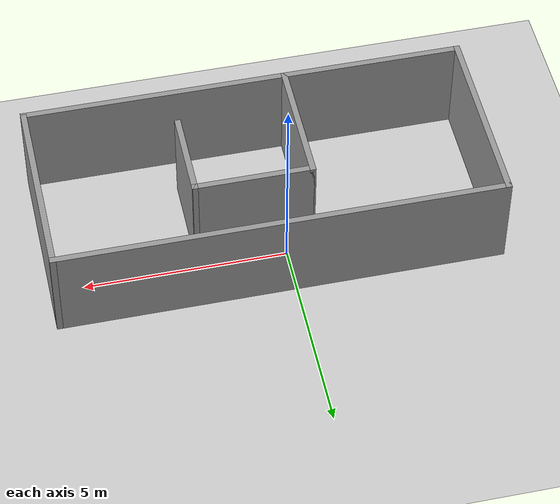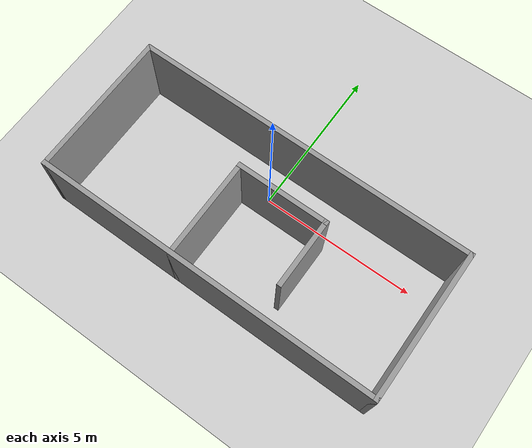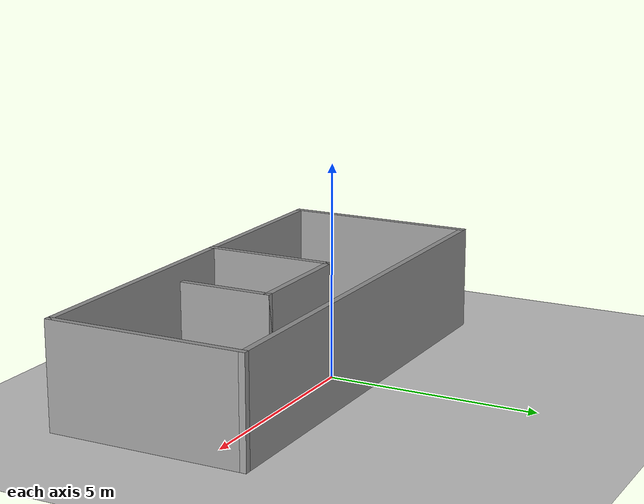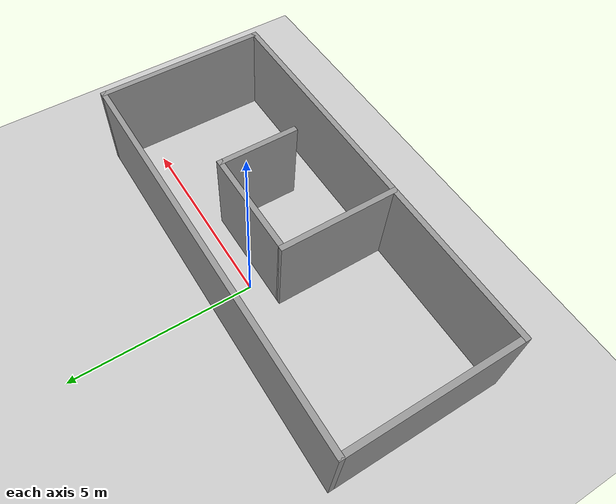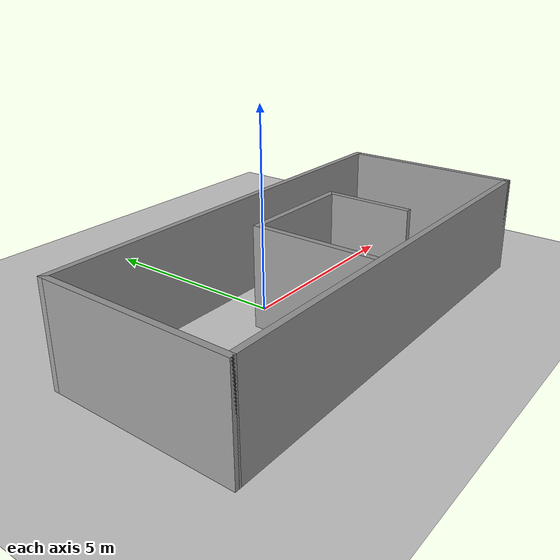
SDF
<sdf version="1.7">
 <world name="default">
  <light name="sun" type="directional">
   <pose>0 0 10 0 -0 0</pose>
   <diffuse>0.8 0.8 0.8 1</diffuse>
   <specular>0.2 0.2 0.2 1</specular>
   <attenuation>
    <range>1000</range>
    <constant>0.9</constant>
    <linear>0.01</linear>
    <quadratic>0.001</quadratic>
   </attenuation>
   <direction>-0.5 0.1 -0.9</direction>
   <spot><inner_angle>0</inner_angle><outer_angle>0</outer_angle><falloff>0</falloff></spot>
  </light>
  <model name="ground_plane">
   <static>1</static>
   <link name="link">
    <collision name="collision">
     <geometry><plane><normal>0 0 1</normal><size>100 100</size></plane></geometry>
     <surface>
      <contact><collide_bitmask>65535</collide_bitmask></contact>
      <friction><ode><mu>100</mu><mu2>50</mu2></ode></friction>
     </surface>
    </collision>
    <visual name="visual">
     <cast_shadows>0</cast_shadows>
     <geometry><plane><normal>0 0 1</normal><size>100 100</size></plane></geometry>
     <material>
      <script><uri>file://media/materials/scripts/gazebo.material</uri><name>Gazebo/Grey</name></script>
     </material>
    </visual>
   </link>
  </model>
  <gravity>0 0 -9.8</gravity>
  <magnetic_field>6e-06 2.3e-05 -4.2e-05</magnetic_field>
  <atmosphere type="adiabatic"/>
  <physics type="ode">
   <max_step_size>0.001</max_step_size>
   <real_time_factor>1</real_time_factor>
   <real_time_update_rate>1000</real_time_update_rate>
  </physics>
  <scene><ambient>0.4 0.4 0.4 1</ambient><background>0.7 0.7 0.7 1</background><shadows>1</shadows></scene>
  <audio><device>default</device></audio>
  <spherical_coordinates>
   <surface_model>EARTH_WGS84</surface_model>
   <latitude_deg>0</latitude_deg>
   <longitude_deg>0</longitude_deg>
   <elevation>0</elevation>
   <heading_deg>0</heading_deg>
  </spherical_coordinates>
  <model name="hotle_room">
   <pose>0.325773 -1.11873 0 0 -0 0</pose>
   <link name="Wall_11">
    <collision name="Wall_11_Collision">
     <geometry><box><size>4.75 0.15 2.5</size></box></geometry>
     <pose>0 0 1.25 0 -0 0</pose>
    </collision>
    <visual name="Wall_11_Visual">
     <pose>0 0 1.25 0 -0 0</pose>
     <geometry><box><size>4.75 0.15 2.5</size></box></geometry>
     <material>
      <script><uri>file://media/materials/scripts/gazebo.material</uri><name>Gazebo/Grey</name></script>
      <ambient>1 1 1 1</ambient>
     </material>
     <meta><layer>0</layer></meta>
    </visual>
    <pose>-5.425 -0.1425 0 0 -0 -1.5708</pose>
   </link>
   <link name="Wall_12">
    <collision name="Wall_12_Collision">
     <geometry><box><size>11 0.15 2.5</size></box></geometry>
     <pose>0 0 1.25 0 -0 0</pose>
    </collision>
    <visual name="Wall_12_Visual">
     <pose>0 0 1.25 0 -0 0</pose>
     <geometry><box><size>11 0.15 2.5</size></box></geometry>
     <material>
      <script><uri>file://media/materials/scripts/gazebo.material</uri><name>Gazebo/Grey</name></script>
      <ambient>1 1 1 1</ambient>
     </material>
     <meta><layer>0</layer></meta>
    </visual>
    <pose>-0 -2.4425 0 0 -0 0</pose>
   </link>
   <link name="Wall_13">
    <collision name="Wall_13_Collision">
     <geometry><box><size>4.75 0.15 2.5</size></box></geometry>
     <pose>0 0 1.25 0 -0 0</pose>
    </collision>
    <visual name="Wall_13_Visual">
     <pose>0 0 1.25 0 -0 0</pose>
     <geometry><box><size>4.75 0.15 2.5</size></box></geometry>
     <material>
      <script><uri>file://media/materials/scripts/gazebo.material</uri><name>Gazebo/Grey</name></script>
      <ambient>1 1 1 1</ambient>
     </material>
     <meta><layer>0</layer></meta>
    </visual>
    <pose>5.425 -0.1425 0 0 -0 1.5708</pose>
   </link>
   <link name="Wall_14">
    <collision name="Wall_14_Collision">
     <geometry><box><size>11 0.15 2.5</size></box></geometry>
     <pose>0 0 1.25 0 -0 0</pose>
    </collision>
    <visual name="Wall_14_Visual">
     <pose>0 0 1.25 0 -0 0</pose>
     <geometry><box><size>11 0.15 2.5</size></box></geometry>
     <material>
      <script><uri>file://media/materials/scripts/gazebo.material</uri><name>Gazebo/Grey</name></script>
      <ambient>1 1 1 1</ambient>
     </material>
     <meta><layer>0</layer></meta>
    </visual>
    <pose>-0 2.1575 0 0 -0 3.14159</pose>
   </link>
   <link name="Wall_16">
    <collision name="Wall_16_Collision">
     <geometry><box><size>3.25 0.15 2.5</size></box></geometry>
     <pose>0 0 1.25 0 -0 0</pose>
    </collision>
    <visual name="Wall_16_Visual">
     <pose>0 0 1.25 0 -0 0</pose>
     <geometry><box><size>3.25 0.15 2.5</size></box></geometry>
     <material>
      <script><uri>file://media/materials/scripts/gazebo.material</uri><name>Gazebo/Grey</name></script>
      <ambient>1 1 1 1</ambient>
     </material>
     <meta><layer>0</layer></meta>
    </visual>
    <pose>-1.035 -0.8925 0 0 -0 1.5708</pose>
   </link>
   <link name="Wall_17">
    <collision name="Wall_17_Collision">
     <geometry><box><size>3 0.15 2.5</size></box></geometry>
     <pose>0 0 1.25 0 -0 0</pose>
    </collision>
    <visual name="Wall_17_Visual">
     <pose>0 0 1.25 0 -0 0</pose>
     <geometry><box><size>3 0.15 2.5</size></box></geometry>
     <material>
      <script><uri>file://media/materials/scripts/gazebo.material</uri><name>Gazebo/Grey</name></script>
      <ambient>1 1 1 1</ambient>
     </material>
     <meta><layer>0</layer></meta>
    </visual>
    <pose>0.39 0.6575 0 0 -0 0</pose>
   </link>
   <link name="Wall_18">
    <collision name="Wall_18_Collision">
     <geometry><box><size>2.25 0.15 2.5</size></box></geometry>
     <pose>0 0 1.25 0 -0 0</pose>
    </collision>
    <visual name="Wall_18_Visual">
     <pose>0 0 1.25 0 -0 0</pose>
     <geometry><box><size>2.25 0.15 2.5</size></box></geometry>
     <material>
      <script><uri>file://media/materials/scripts/gazebo.material</uri><name>Gazebo/Grey</name></script>
      <ambient>1 1 1 1</ambient>
     </material>
     <meta><layer>0</layer></meta>
    </visual>
    <pose>1.815 -0.3925 0 0 -0 -1.5708</pose>
   </link>
   <static>1</static>
  </model>
 </world>
</sdf>
